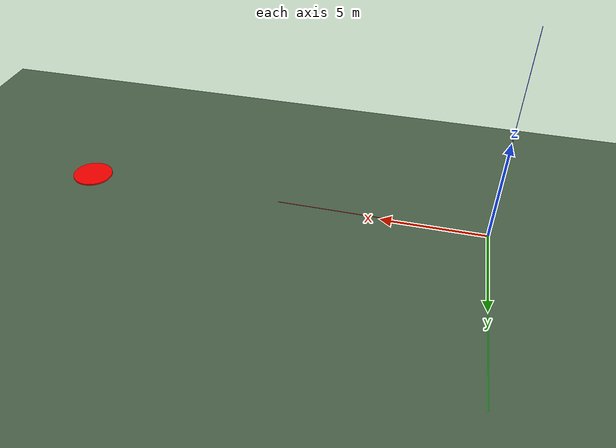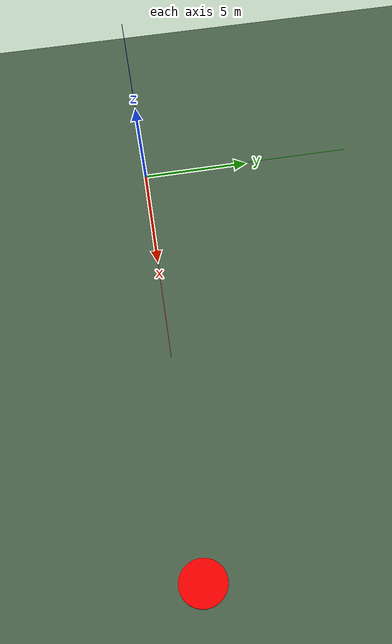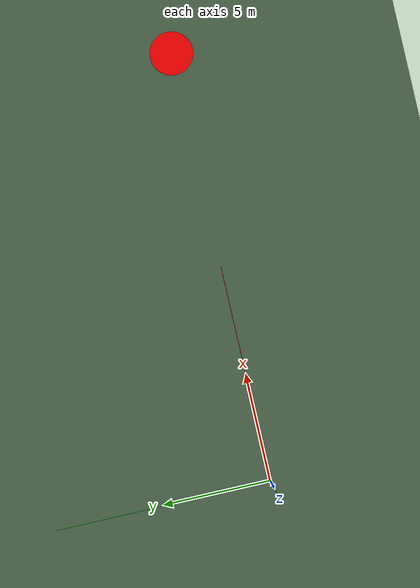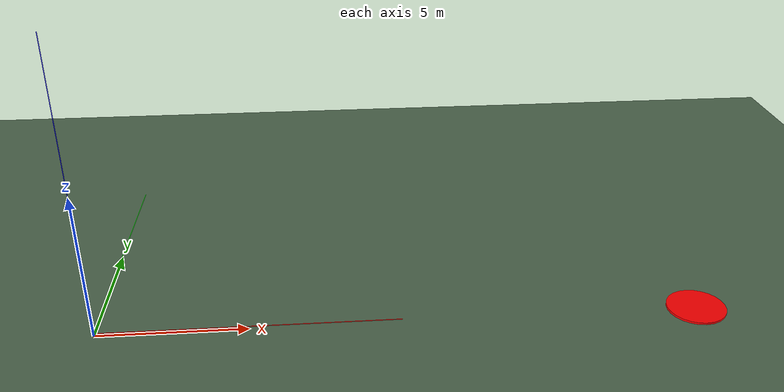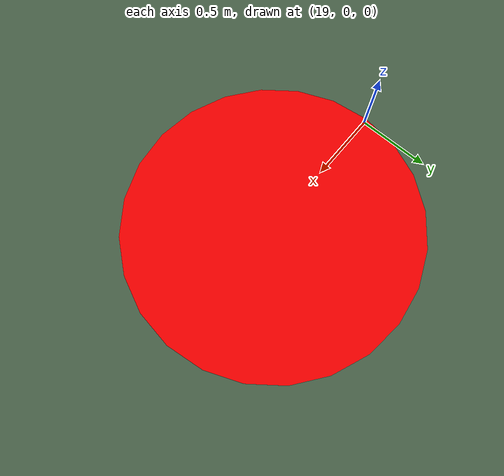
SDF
<sdf version="1.9">
 <world name="single_drone_world">
  <physics name="1ms" type="ignore">
   <max_step_size>0.001</max_step_size>
   <real_time_factor>1.0</real_time_factor>
  </physics>
  <plugin filename="gz-sim-physics-system" name="gz::sim::systems::Physics"/>
  <plugin filename="gz-sim-sensors-system" name="gz::sim::systems::Sensors">
   <render_engine>ogre2</render_engine>
  </plugin>
  <plugin filename="gz-sim-user-commands-system" name="gz::sim::systems::UserCommands"/>
  <plugin filename="gz-sim-scene-broadcaster-system" name="gz::sim::systems::SceneBroadcaster"/>
  <plugin filename="gz-sim-imu-system" name="gz::sim::systems::Imu"/>
  <plugin filename="gz-sim-navsat-system" name="gz::sim::systems::NavSat"/>
  <scene><ambient>1.0 1.0 1.0</ambient><background>0.8 0.8 0.8</background></scene>
  <spherical_coordinates>
   <latitude_deg>-35.363262</latitude_deg>
   <longitude_deg>149.165237</longitude_deg>
   <elevation>584</elevation>
   <heading_deg>0</heading_deg>
   <surface_model>EARTH_WGS84</surface_model>
  </spherical_coordinates>
  <light type="directional" name="sun">
   <pose>0 0 10 0 0 0</pose>
   <diffuse>0.8 0.8 0.8 1</diffuse>
   <specular>0.8 0.8 0.8 1</specular>
   <attenuation>
    <range>1000</range>
    <constant>0.9</constant>
    <linear>0.01</linear>
    <quadratic>0.001</quadratic>
   </attenuation>
   <direction>-0.5 0.1 -0.9</direction>
  </light>
  <model name="ground_plane">
   <static>true</static>
   <link name="link">
    <collision name="collision">
     <geometry><plane><normal>0 0 1</normal><size>500 500</size></plane></geometry>
    </collision>
    <visual name="visual">
     <geometry><plane><normal>0 0 1</normal><size>500 500</size></plane></geometry>
     <material><ambient>0.3 0.4 0.3 1</ambient><diffuse>0.3 0.4 0.3 1</diffuse></material>
    </visual>
   </link>
  </model>
  <model name="axes">
   <static>true</static>
   <link name="link">
    <visual name="x_axis">
     <cast_shadows>false</cast_shadows>
     <pose>5 0 0.1 0 0 0</pose>
     <geometry><box><size>10 0.02 0.02</size></box></geometry>
     <material><ambient>1 0 0 0.8</ambient><diffuse>1 0 0 0.8</diffuse><emissive>1 0 0 0.8</emissive></material>
    </visual>
    <visual name="y_axis">
     <cast_shadows>false</cast_shadows>
     <pose>0 5 0.1 0 0 0</pose>
     <geometry><box><size>0.02 10 0.02</size></box></geometry>
     <material><ambient>0 1 0 0.8</ambient><diffuse>0 1 0 0.8</diffuse><emissive>0 1 0 0.8</emissive></material>
    </visual>
    <visual name="z_axis">
     <cast_shadows>false</cast_shadows>
     <pose>0 0 5.1 0 0 0</pose>
     <geometry><box><size>0.02 0.02 10</size></box></geometry>
     <material><ambient>0 0 1 0.8</ambient><diffuse>0 0 1 0.8</diffuse><emissive>0 0 1 0.8</emissive></material>
    </visual>
   </link>
  </model>
  <model name="target_marker">
   <static>true</static>
   <pose>20 0 0 0 0 0</pose>
   <link name="link">
    <visual name="visual">
     <geometry><cylinder><radius>1.0</radius><length>0.1</length></cylinder></geometry>
     <material><ambient>1 0 0 1</ambient><diffuse>1 0 0 1</diffuse></material>
    </visual>
   </link>
  </model>
 </world>
</sdf>
